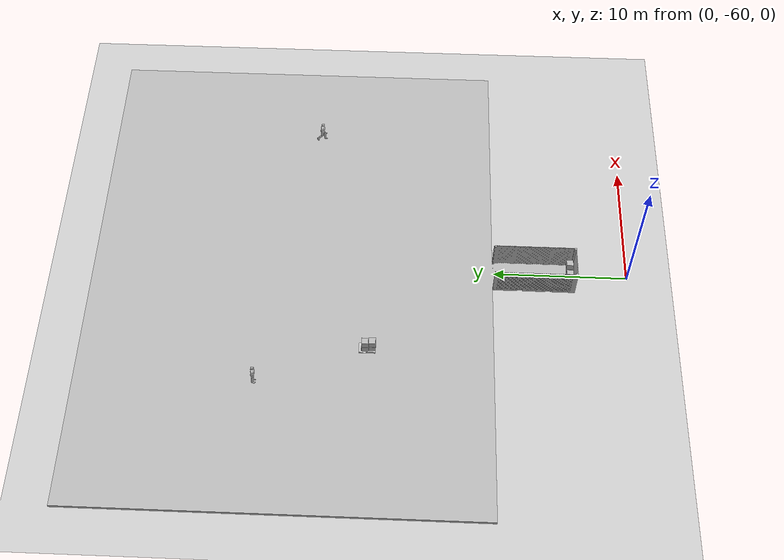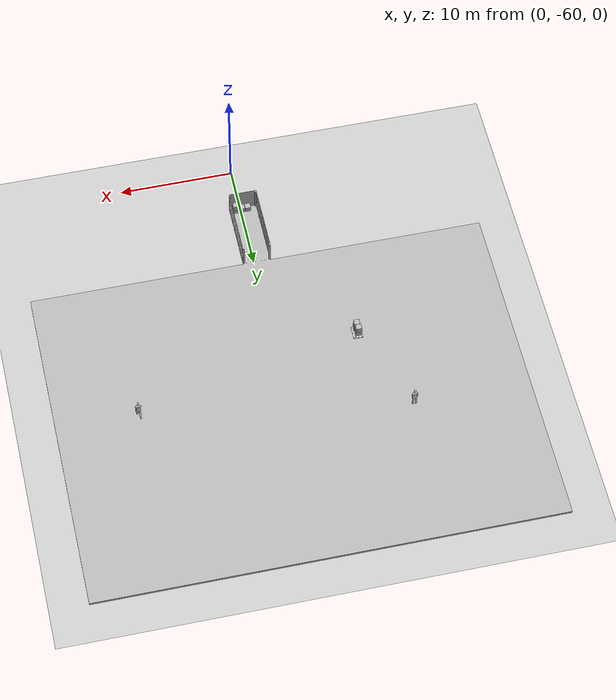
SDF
<sdf version="1.7">
 <world name="default">
  <light name="sun" type="directional">
   <pose>0 0 10 0 -0 0</pose>
   <diffuse>0.8 0.8 0.8 1</diffuse>
   <specular>0.2 0.2 0.2 1</specular>
   <attenuation>
    <range>1000</range>
    <constant>0.9</constant>
    <linear>0.01</linear>
    <quadratic>0.001</quadratic>
   </attenuation>
   <direction>-0.5 0.1 -0.9</direction>
   <spot><inner_angle>0</inner_angle><outer_angle>0</outer_angle><falloff>0</falloff></spot>
  </light>
  <model name="ground_plane">
   <static>1</static>
   <link name="link">
    <collision name="collision">
     <geometry><plane><normal>0 0 1</normal><size>100 100</size></plane></geometry>
     <surface>
      <contact><collide_bitmask>65535</collide_bitmask></contact>
      <friction><ode><mu>100</mu><mu2>50</mu2></ode></friction>
     </surface>
    </collision>
    <visual name="visual">
     <cast_shadows>0</cast_shadows>
     <geometry><plane><normal>0 0 1</normal><size>100 100</size></plane></geometry>
     <material>
      <script><uri>file://media/materials/scripts/gazebo.material</uri><name>Gazebo/Grey</name></script>
     </material>
    </visual>
   </link>
  </model>
  <gravity>0 0 -9.8</gravity>
  <magnetic_field>6e-06 2.3e-05 -4.2e-05</magnetic_field>
  <atmosphere type="adiabatic"/>
  <physics type="ode">
   <max_step_size>0.001</max_step_size>
   <real_time_factor>1</real_time_factor>
   <real_time_update_rate>1000</real_time_update_rate>
  </physics>
  <scene><ambient>0.4 0.4 0.4 1</ambient><background>0.7 0.7 0.7 1</background><shadows>1</shadows></scene>
  <spherical_coordinates>
   <surface_model>EARTH_WGS84</surface_model>
   <latitude_deg>0</latitude_deg>
   <longitude_deg>0</longitude_deg>
   <elevation>0</elevation>
   <heading_deg>0</heading_deg>
  </spherical_coordinates>
  <model name="euro_pallet">
   <link name="link">
    <pose>0 0 0.05 0 -0 0</pose>
    <inertial>
     <mass>20</mass>
     <inertia><ixx>2.43</ixx><ixy>0</ixy><ixz>0</ixz><iyy>1.1</iyy><iyz>0</iyz><izz>3.47</izz></inertia>
    </inertial>
    <collision name="collision">
     <pose>0 0 0.05 0 -0 0</pose>
     <geometry><mesh><uri>model://euro_pallet/meshes/pallet.dae</uri><scale>0.1 0.1 0.1</scale></mesh></geometry>
    </collision>
    <visual name="visual">
     <pose>0 0 0.05 0 -0 0</pose>
     <geometry><mesh><uri>model://euro_pallet/meshes/pallet.dae</uri><scale>0.1 0.1 0.1</scale></mesh></geometry>
    </visual>
   </link>
   <pose>-7.06548 -40.7663 0.245008 1e-06 -1e-06 3.5e-05</pose>
  </model>
  <model name="500x500x500_box_clone">
   <link name="link">
    <collision name="collision">
     <geometry>
      <mesh><scale>1 1 1</scale><uri>model://500x500x500_box/meshes/500x500x500_box_v2.dae</uri></mesh>
     </geometry>
    </collision>
    <visual name="visual">
     <geometry>
      <mesh><scale>1 1 1</scale><uri>model://500x500x500_box/meshes/500x500x500_box_v2.dae</uri></mesh>
     </geometry>
    </visual>
    <inertial>
     <inertia><ixx>1</ixx><ixy>0</ixy><ixz>0</ixz><iyy>1</iyy><iyz>0</iyz><izz>1</izz></inertia>
     <mass>1</mass>
    </inertial>
   </link>
   <pose>-7.15408 -40.6028 1.11729 -0.0002 -3.3e-05 0.00026</pose>
  </model>
  <model name="500x500x500_box_clone_clone">
   <link name="link">
    <collision name="collision">
     <geometry>
      <mesh><scale>1 1 1</scale><uri>model://500x500x500_box/meshes/500x500x500_box_v2.dae</uri></mesh>
     </geometry>
    </collision>
    <visual name="visual">
     <geometry>
      <mesh><scale>1 1 1</scale><uri>model://500x500x500_box/meshes/500x500x500_box_v2.dae</uri></mesh>
     </geometry>
    </visual>
    <inertial>
     <inertia><ixx>1</ixx><ixy>0</ixy><ixz>0</ixz><iyy>1</iyy><iyz>0</iyz><izz>1</izz></inertia>
     <mass>1</mass>
    </inertial>
   </link>
   <pose>-7.11151 -41.1175 1.11783 -0.00175 -0.00046 0.000588</pose>
  </model>
  <model name="500x500x500_box_clone_clone_clone_clone_clone_0">
   <link name="link">
    <collision name="collision">
     <geometry>
      <mesh><scale>1 1 1</scale><uri>model://500x500x500_box/meshes/500x500x500_box_v2.dae</uri></mesh>
     </geometry>
    </collision>
    <visual name="visual">
     <geometry>
      <mesh><scale>1 1 1</scale><uri>model://500x500x500_box/meshes/500x500x500_box_v2.dae</uri></mesh>
     </geometry>
    </visual>
    <inertial>
     <inertia><ixx>1</ixx><ixy>0</ixy><ixz>0</ixz><iyy>1</iyy><iyz>0</iyz><izz>1</izz></inertia>
     <mass>1</mass>
    </inertial>
   </link>
   <pose>-7.15888 -40.6008 0.617283 -0.000197 -2.9e-05 0.002766</pose>
  </model>
  <model name="500x500x500_box_clone_clone_clone_clone_clone_0_clone">
   <link name="link">
    <collision name="collision">
     <geometry>
      <mesh><scale>1 1 1</scale><uri>model://500x500x500_box/meshes/500x500x500_box_v2.dae</uri></mesh>
     </geometry>
    </collision>
    <visual name="visual">
     <geometry>
      <mesh><scale>1 1 1</scale><uri>model://500x500x500_box/meshes/500x500x500_box_v2.dae</uri></mesh>
     </geometry>
    </visual>
    <inertial>
     <inertia><ixx>1</ixx><ixy>0</ixy><ixz>0</ixz><iyy>1</iyy><iyz>0</iyz><izz>1</izz></inertia>
     <mass>1</mass>
    </inertial>
   </link>
   <pose>-7.1096 -41.1277 0.617229 -5e-06 -0.000142 0.002698</pose>
  </model>
  <model name="person_walking">
   <link name="link">
    <inertial>
     <pose>0 0 0.95 0 -0 0</pose>
     <mass>80</mass>
     <inertia><ixx>27.82</ixx><ixy>0</ixy><ixz>0</ixz><iyy>24.88</iyy><iyz>0</iyz><izz>4.57</izz></inertia>
    </inertial>
    <collision name="bottom">
     <pose>0 0 0.01 0 -0 0</pose>
     <geometry><box><size>0.35 0.75 0.02</size></box></geometry>
    </collision>
    <collision name="person">
     <pose>0 0 -0.02 0 -0 0</pose>
     <geometry><mesh><uri>model://person_walking/meshes/walking.dae</uri></mesh></geometry>
    </collision>
    <visual name="visual">
     <pose>0 0 -0.02 0 -0 0</pose>
     <geometry><mesh><uri>model://person_walking/meshes/walking.dae</uri></mesh></geometry>
    </visual>
   </link>
   <pose>12.6629 -36.4496 0.222997 0 -0 0</pose>
  </model>
  <model name="person_standing">
   <link name="link">
    <inertial>
     <pose>0 -0.1 0.95 0 -0 0</pose>
     <mass>80</mass>
     <inertia><ixx>24.88</ixx><ixy>0</ixy><ixz>0</ixz><iyy>25.73</iyy><iyz>0</iyz><izz>2.48</izz></inertia>
    </inertial>
    <collision name="bottom">
     <pose>0 -0.1 0.01 0 -0 0</pose>
     <geometry><box><size>0.5 0.35 0.02</size></box></geometry>
    </collision>
    <collision name="person">
     <pose>0 0 0.02 0.04 -0 0</pose>
     <geometry><mesh><uri>model://person_standing/meshes/standing.dae</uri></mesh></geometry>
    </collision>
    <visual name="visual">
     <pose>0 0 0.02 0.04 -0 0</pose>
     <geometry><mesh><uri>model://person_standing/meshes/standing.dae</uri></mesh></geometry>
    </visual>
   </link>
   <pose>-10.1471 -32.7169 0.223007 0 -0 0</pose>
  </model>
  <model name="Warehouse_with_open_top_container">
   <static>1</static>
   <link name="link">
    <collision name="collision">
     <geometry>
      <mesh><uri>model://warehouse_03/meshes/warehouse_v05 v2.stl</uri><scale>0.001 0.001 0.001</scale></mesh>
     </geometry>
    </collision>
    <visual name="visual">
     <geometry>
      <mesh><uri>model://warehouse_03/meshes/warehouse_v05 v2.stl</uri><scale>0.001 0.001 0.001</scale></mesh>
     </geometry>
    </visual>
   </link>
   <pose>-0.266861 -49.8949 0 0 -0 0</pose>
  </model>
  <model name="500x500x500_box_clone_clone_0">
   <link name="link">
    <collision name="collision">
     <geometry>
      <mesh><scale>1 1 1</scale><uri>model://500x500x500_box/meshes/500x500x500_box_v2.dae</uri></mesh>
     </geometry>
    </collision>
    <visual name="visual">
     <geometry>
      <mesh><scale>1 1 1</scale><uri>model://500x500x500_box/meshes/500x500x500_box_v2.dae</uri></mesh>
     </geometry>
    </visual>
    <inertial>
     <inertia><ixx>1</ixx><ixy>0</ixy><ixz>0</ixz><iyy>1</iyy><iyz>0</iyz><izz>1</izz></inertia>
     <mass>1</mass>
    </inertial>
   </link>
   <pose>0.446697 -55.7031 0.473009 3e-06 -6e-06 1.1e-05</pose>
  </model>
  <model name="500x500x500_box_clone_clone_0_clone">
   <link name="link">
    <collision name="collision">
     <geometry>
      <mesh><scale>1 1 1</scale><uri>model://500x500x500_box/meshes/500x500x500_box_v2.dae</uri></mesh>
     </geometry>
    </collision>
    <visual name="visual">
     <geometry>
      <mesh><scale>1 1 1</scale><uri>model://500x500x500_box/meshes/500x500x500_box_v2.dae</uri></mesh>
     </geometry>
    </visual>
    <inertial>
     <inertia><ixx>1</ixx><ixy>0</ixy><ixz>0</ixz><iyy>1</iyy><iyz>0</iyz><izz>1</izz></inertia>
     <mass>1</mass>
    </inertial>
   </link>
   <pose>-0.09953 -55.6959 0.473008 -1e-06 1e-06 0</pose>
  </model>
  <model name="500x500x500_box_clone_clone_0_clone_clone">
   <link name="link">
    <collision name="collision">
     <geometry>
      <mesh><scale>1 1 1</scale><uri>model://500x500x500_box/meshes/500x500x500_box_v2.dae</uri></mesh>
     </geometry>
    </collision>
    <visual name="visual">
     <geometry>
      <mesh><scale>1 1 1</scale><uri>model://500x500x500_box/meshes/500x500x500_box_v2.dae</uri></mesh>
     </geometry>
    </visual>
    <inertial>
     <inertia><ixx>1</ixx><ixy>0</ixy><ixz>0</ixz><iyy>1</iyy><iyz>0</iyz><izz>1</izz></inertia>
     <mass>1</mass>
    </inertial>
   </link>
   <pose>-0.62809 -55.6947 0.473007 -0 -0 -0</pose>
  </model>
  <model name="500x500x500_box_clone_clone_0_clone_clone_clone">
   <link name="link">
    <collision name="collision">
     <geometry>
      <mesh><scale>1 1 1</scale><uri>model://500x500x500_box/meshes/500x500x500_box_v2.dae</uri></mesh>
     </geometry>
    </collision>
    <visual name="visual">
     <geometry>
      <mesh><scale>1 1 1</scale><uri>model://500x500x500_box/meshes/500x500x500_box_v2.dae</uri></mesh>
     </geometry>
    </visual>
    <inertial>
     <inertia><ixx>1</ixx><ixy>0</ixy><ixz>0</ixz><iyy>1</iyy><iyz>0</iyz><izz>1</izz></inertia>
     <mass>1</mass>
    </inertial>
   </link>
   <pose>0.449867 -55.6273 0.97301 4e-06 -8e-06 2.3e-05</pose>
  </model>
 </world>
</sdf>
